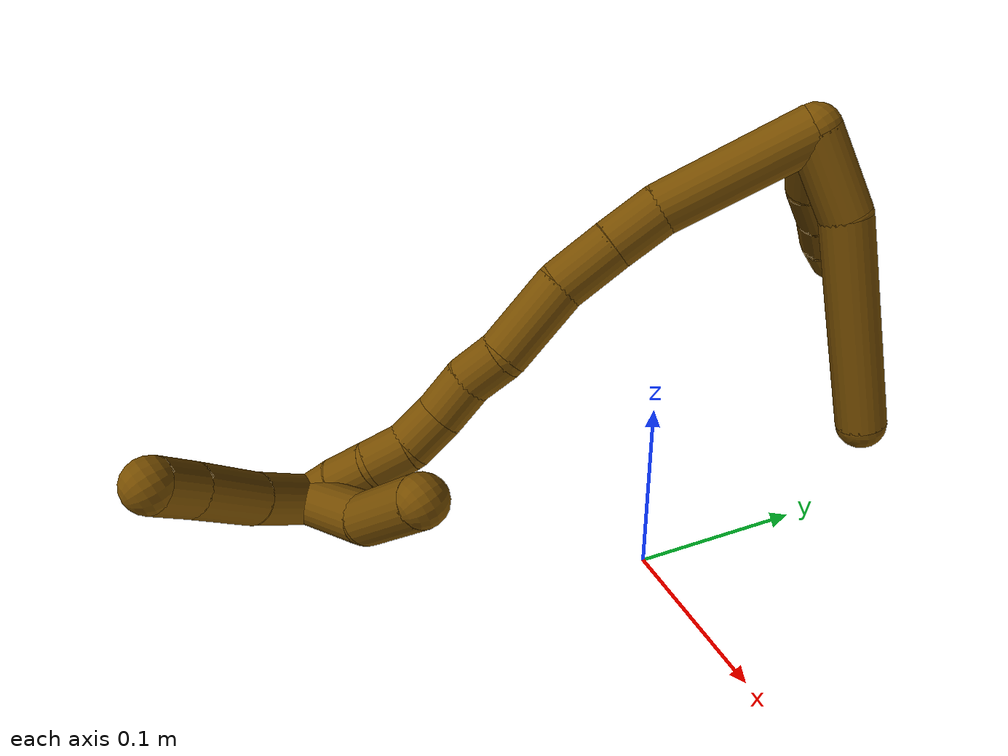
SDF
<sdf version="1.7">
 <world name="default">
  <model name="12">
   <static>0</static>
   <link name="12">
    <collision name="collision-cylinder-e_1_2_8">
     <pose>0.020524 0.002142 -0.000743 -1.90483 1.46075 -1.79895</pose>
     <geometry><cylinder><radius>0.0125</radius><length>0.041297</length></cylinder></geometry>
     <surface>
      <friction><ode><mu>1.16</mu><mu2>1.16</mu2><slip1>0</slip1><slip2>0</slip2></ode></friction>
      <contact><ode><kp>1e+06</kp><kd>1</kd><max_vel>0</max_vel><min_depth>0.001</min_depth></ode></contact>
     </surface>
    </collision>
    <visual name="visual-cylinder-e_1_2_8">
     <pose>0.020524 0.002142 -0.000743 -1.90483 1.46075 -1.79895</pose>
     <geometry><cylinder><radius>0.0125</radius><length>0.041297</length></cylinder></geometry>
     <material><ambient>0.466667 0.301961 0 1</ambient></material>
    </visual>
    <collision name="collision-cylinder-e_2_8_6">
     <pose>0.094699 -0.000383 0.005844 0.566953 1.4102 0.486056</pose>
     <geometry><cylinder><radius>0.0125</radius><length>0.108703</length></cylinder></geometry>
     <surface>
      <friction><ode><mu>1.16</mu><mu2>1.16</mu2><slip1>0</slip1><slip2>0</slip2></ode></friction>
      <contact><ode><kp>1e+06</kp><kd>1</kd><max_vel>0</max_vel><min_depth>0.001</min_depth></ode></contact>
     </surface>
    </collision>
    <visual name="visual-cylinder-e_2_8_6">
     <pose>0.094699 -0.000383 0.005844 0.566953 1.4102 0.486056</pose>
     <geometry><cylinder><radius>0.0125</radius><length>0.108703</length></cylinder></geometry>
     <material><ambient>0.466667 0.301961 0 1</ambient></material>
    </visual>
    <collision name="collision-cylinder-e_1_2_9">
     <pose>0.014243 -0.008206 -0.003726 1.99702 1.00663 1.41446</pose>
     <geometry><cylinder><radius>0.0125</radius><length>0.033709</length></cylinder></geometry>
     <surface>
      <friction><ode><mu>1.16</mu><mu2>1.16</mu2><slip1>0</slip1><slip2>0</slip2></ode></friction>
      <contact><ode><kp>1e+06</kp><kd>1</kd><max_vel>0</max_vel><min_depth>0.001</min_depth></ode></contact>
     </surface>
    </collision>
    <visual name="visual-cylinder-e_1_2_9">
     <pose>0.014243 -0.008206 -0.003726 1.99702 1.00663 1.41446</pose>
     <geometry><cylinder><radius>0.0125</radius><length>0.033709</length></cylinder></geometry>
     <material><ambient>0.466667 0.301961 0 1</ambient></material>
    </visual>
    <collision name="collision-cylinder-e_2_9_10">
     <pose>0.038265 -0.019733 -0.011607 2.46734 1.0726 2.07602</pose>
     <geometry><cylinder><radius>0.0125</radius><length>0.022265</length></cylinder></geometry>
     <surface>
      <friction><ode><mu>1.16</mu><mu2>1.16</mu2><slip1>0</slip1><slip2>0</slip2></ode></friction>
      <contact><ode><kp>1e+06</kp><kd>1</kd><max_vel>0</max_vel><min_depth>0.001</min_depth></ode></contact>
     </surface>
    </collision>
    <visual name="visual-cylinder-e_2_9_10">
     <pose>0.038265 -0.019733 -0.011607 2.46734 1.0726 2.07602</pose>
     <geometry><cylinder><radius>0.0125</radius><length>0.022265</length></cylinder></geometry>
     <material><ambient>0.466667 0.301961 0 1</ambient></material>
    </visual>
    <collision name="collision-cylinder-e_3_10_11">
     <pose>0.056756 -0.027863 -0.01977 2.26556 0.947748 1.66141</pose>
     <geometry><cylinder><radius>0.0125</radius><length>0.021455</length></cylinder></geometry>
     <surface>
      <friction><ode><mu>1.16</mu><mu2>1.16</mu2><slip1>0</slip1><slip2>0</slip2></ode></friction>
      <contact><ode><kp>1e+06</kp><kd>1</kd><max_vel>0</max_vel><min_depth>0.001</min_depth></ode></contact>
     </surface>
    </collision>
    <visual name="visual-cylinder-e_3_10_11">
     <pose>0.056756 -0.027863 -0.01977 2.26556 0.947748 1.66141</pose>
     <geometry><cylinder><radius>0.0125</radius><length>0.021455</length></cylinder></geometry>
     <material><ambient>0.466667 0.301961 0 1</ambient></material>
    </visual>
    <collision name="collision-cylinder-e_4_11_5">
     <pose>0.07381 -0.037165 -0.029908 2.50908 0.831836 1.86631</pose>
     <geometry><cylinder><radius>0.0125</radius><length>0.022571</length></cylinder></geometry>
     <surface>
      <friction><ode><mu>1.16</mu><mu2>1.16</mu2><slip1>0</slip1><slip2>0</slip2></ode></friction>
      <contact><ode><kp>1e+06</kp><kd>1</kd><max_vel>0</max_vel><min_depth>0.001</min_depth></ode></contact>
     </surface>
    </collision>
    <visual name="visual-cylinder-e_4_11_5">
     <pose>0.07381 -0.037165 -0.029908 2.50908 0.831836 1.86631</pose>
     <geometry><cylinder><radius>0.0125</radius><length>0.022571</length></cylinder></geometry>
     <material><ambient>0.466667 0.301961 0 1</ambient></material>
    </visual>
    <collision name="collision-cylinder-e_1_2_12">
     <pose>0.004796 -0.022697 0.029169 0.661248 0.129047 0.044346</pose>
     <geometry><cylinder><radius>0.0125</radius><length>0.074538</length></cylinder></geometry>
     <surface>
      <friction><ode><mu>1.16</mu><mu2>1.16</mu2><slip1>0</slip1><slip2>0</slip2></ode></friction>
      <contact><ode><kp>1e+06</kp><kd>1</kd><max_vel>0</max_vel><min_depth>0.001</min_depth></ode></contact>
     </surface>
    </collision>
    <visual name="visual-cylinder-e_1_2_12">
     <pose>0.004796 -0.022697 0.029169 0.661248 0.129047 0.044346</pose>
     <geometry><cylinder><radius>0.0125</radius><length>0.074538</length></cylinder></geometry>
     <material><ambient>0.466667 0.301961 0 1</ambient></material>
    </visual>
    <collision name="collision-cylinder-e_2_12_13">
     <pose>0.01287 -0.05122 0.070042 0.461885 0.245619 0.05803</pose>
     <geometry><cylinder><radius>0.0125</radius><length>0.026957</length></cylinder></geometry>
     <surface>
      <friction><ode><mu>1.16</mu><mu2>1.16</mu2><slip1>0</slip1><slip2>0</slip2></ode></friction>
      <contact><ode><kp>1e+06</kp><kd>1</kd><max_vel>0</max_vel><min_depth>0.001</min_depth></ode></contact>
     </surface>
    </collision>
    <visual name="visual-cylinder-e_2_12_13">
     <pose>0.01287 -0.05122 0.070042 0.461885 0.245619 0.05803</pose>
     <geometry><cylinder><radius>0.0125</radius><length>0.026957</length></cylinder></geometry>
     <material><ambient>0.466667 0.301961 0 1</ambient></material>
    </visual>
    <collision name="collision-cylinder-e_3_13_14">
     <pose>0.020357 -0.063604 0.094794 0.465767 0.28069 0.066992</pose>
     <geometry><cylinder><radius>0.0125</radius><length>0.030396</length></cylinder></geometry>
     <surface>
      <friction><ode><mu>1.16</mu><mu2>1.16</mu2><slip1>0</slip1><slip2>0</slip2></ode></friction>
      <contact><ode><kp>1e+06</kp><kd>1</kd><max_vel>0</max_vel><min_depth>0.001</min_depth></ode></contact>
     </surface>
    </collision>
    <visual name="visual-cylinder-e_3_13_14">
     <pose>0.020357 -0.063604 0.094794 0.465767 0.28069 0.066992</pose>
     <geometry><cylinder><radius>0.0125</radius><length>0.030396</length></cylinder></geometry>
     <material><ambient>0.466667 0.301961 0 1</ambient></material>
    </visual>
    <collision name="collision-cylinder-e_4_14_15">
     <pose>0.033686 -0.076515 0.125494 0.345408 0.452442 0.080256</pose>
     <geometry><cylinder><radius>0.0125</radius><length>0.041718</length></cylinder></geometry>
     <surface>
      <friction><ode><mu>1.16</mu><mu2>1.16</mu2><slip1>0</slip1><slip2>0</slip2></ode></friction>
      <contact><ode><kp>1e+06</kp><kd>1</kd><max_vel>0</max_vel><min_depth>0.001</min_depth></ode></contact>
     </surface>
    </collision>
    <visual name="visual-cylinder-e_4_14_15">
     <pose>0.033686 -0.076515 0.125494 0.345408 0.452442 0.080256</pose>
     <geometry><cylinder><radius>0.0125</radius><length>0.041718</length></cylinder></geometry>
     <material><ambient>0.466667 0.301961 0 1</ambient></material>
    </visual>
    <collision name="collision-cylinder-e_5_15_16">
     <pose>0.046286 -0.089425 0.150986 0.696659 0.328217 0.120125</pose>
     <geometry><cylinder><radius>0.0125</radius><length>0.021595</length></cylinder></geometry>
     <surface>
      <friction><ode><mu>1.16</mu><mu2>1.16</mu2><slip1>0</slip1><slip2>0</slip2></ode></friction>
      <contact><ode><kp>1e+06</kp><kd>1</kd><max_vel>0</max_vel><min_depth>0.001</min_depth></ode></contact>
     </surface>
    </collision>
    <visual name="visual-cylinder-e_5_15_16">
     <pose>0.046286 -0.089425 0.150986 0.696659 0.328217 0.120125</pose>
     <geometry><cylinder><radius>0.0125</radius><length>0.021595</length></cylinder></geometry>
     <material><ambient>0.466667 0.301961 0 1</ambient></material>
    </visual>
    <collision name="collision-cylinder-e_6_16_17">
     <pose>0.055267 -0.100698 0.16773 0.486885 0.499686 0.126585</pose>
     <geometry><cylinder><radius>0.0125</radius><length>0.02296</length></cylinder></geometry>
     <surface>
      <friction><ode><mu>1.16</mu><mu2>1.16</mu2><slip1>0</slip1><slip2>0</slip2></ode></friction>
      <contact><ode><kp>1e+06</kp><kd>1</kd><max_vel>0</max_vel><min_depth>0.001</min_depth></ode></contact>
     </surface>
    </collision>
    <visual name="visual-cylinder-e_6_16_17">
     <pose>0.055267 -0.100698 0.16773 0.486885 0.499686 0.126585</pose>
     <geometry><cylinder><radius>0.0125</radius><length>0.02296</length></cylinder></geometry>
     <material><ambient>0.466667 0.301961 0 1</ambient></material>
    </visual>
    <collision name="collision-cylinder-e_7_17_18">
     <pose>0.064304 -0.108287 0.186283 0.289629 0.337885 0.04974</pose>
     <geometry><cylinder><radius>0.0125</radius><length>0.02134</length></cylinder></geometry>
     <surface>
      <friction><ode><mu>1.16</mu><mu2>1.16</mu2><slip1>0</slip1><slip2>0</slip2></ode></friction>
      <contact><ode><kp>1e+06</kp><kd>1</kd><max_vel>0</max_vel><min_depth>0.001</min_depth></ode></contact>
     </surface>
    </collision>
    <visual name="visual-cylinder-e_7_17_18">
     <pose>0.064304 -0.108287 0.186283 0.289629 0.337885 0.04974</pose>
     <geometry><cylinder><radius>0.0125</radius><length>0.02134</length></cylinder></geometry>
     <material><ambient>0.466667 0.301961 0 1</ambient></material>
    </visual>
    <collision name="collision-cylinder-e_8_18_19">
     <pose>0.068762 -0.115805 0.204745 0.484768 0.092138 0.022796</pose>
     <geometry><cylinder><radius>0.0125</radius><length>0.020009</length></cylinder></geometry>
     <surface>
      <friction><ode><mu>1.16</mu><mu2>1.16</mu2><slip1>0</slip1><slip2>0</slip2></ode></friction>
      <contact><ode><kp>1e+06</kp><kd>1</kd><max_vel>0</max_vel><min_depth>0.001</min_depth></ode></contact>
     </surface>
    </collision>
    <visual name="visual-cylinder-e_8_18_19">
     <pose>0.068762 -0.115805 0.204745 0.484768 0.092138 0.022796</pose>
     <geometry><cylinder><radius>0.0125</radius><length>0.020009</length></cylinder></geometry>
     <material><ambient>0.466667 0.301961 0 1</ambient></material>
    </visual>
    <collision name="collision-cylinder-e_9_19_20">
     <pose>0.071457 -0.127208 0.220918 0.743112 0.175776 0.068642</pose>
     <geometry><cylinder><radius>0.0125</radius><length>0.020299</length></cylinder></geometry>
     <surface>
      <friction><ode><mu>1.16</mu><mu2>1.16</mu2><slip1>0</slip1><slip2>0</slip2></ode></friction>
      <contact><ode><kp>1e+06</kp><kd>1</kd><max_vel>0</max_vel><min_depth>0.001</min_depth></ode></contact>
     </surface>
    </collision>
    <visual name="visual-cylinder-e_9_19_20">
     <pose>0.071457 -0.127208 0.220918 0.743112 0.175776 0.068642</pose>
     <geometry><cylinder><radius>0.0125</radius><length>0.020299</length></cylinder></geometry>
     <material><ambient>0.466667 0.301961 0 1</ambient></material>
    </visual>
    <collision name="collision-cylinder-e_10_20_1">
     <pose>0.075898 -0.140453 0.235539 0.728794 0.267213 0.102444</pose>
     <geometry><cylinder><radius>0.0125</radius><length>0.020187</length></cylinder></geometry>
     <surface>
      <friction><ode><mu>1.16</mu><mu2>1.16</mu2><slip1>0</slip1><slip2>0</slip2></ode></friction>
      <contact><ode><kp>1e+06</kp><kd>1</kd><max_vel>0</max_vel><min_depth>0.001</min_depth></ode></contact>
     </surface>
    </collision>
    <visual name="visual-cylinder-e_10_20_1">
     <pose>0.075898 -0.140453 0.235539 0.728794 0.267213 0.102444</pose>
     <geometry><cylinder><radius>0.0125</radius><length>0.020187</length></cylinder></geometry>
     <material><ambient>0.466667 0.301961 0 1</ambient></material>
    </visual>
    <collision name="collision-cylinder-e_1_1_21">
     <pose>0.078116 -0.119452 0.238509 -1.72575 -0.01606 0.018764</pose>
     <geometry><cylinder><radius>0.0125</radius><length>0.055642</length></cylinder></geometry>
     <surface>
      <friction><ode><mu>1.16</mu><mu2>1.16</mu2><slip1>0</slip1><slip2>0</slip2></ode></friction>
      <contact><ode><kp>1e+06</kp><kd>1</kd><max_vel>0</max_vel><min_depth>0.001</min_depth></ode></contact>
     </surface>
    </collision>
    <visual name="visual-cylinder-e_1_1_21">
     <pose>0.078116 -0.119452 0.238509 -1.72575 -0.01606 0.018764</pose>
     <geometry><cylinder><radius>0.0125</radius><length>0.055642</length></cylinder></geometry>
     <material><ambient>0.466667 0.301961 0 1</ambient></material>
    </visual>
    <collision name="collision-cylinder-e_2_21_4">
     <pose>0.07136 -0.072121 0.226587 -1.93774 -0.288437 0.416668</pose>
     <geometry><cylinder><radius>0.0125</radius><length>0.044358</length></cylinder></geometry>
     <surface>
      <friction><ode><mu>1.16</mu><mu2>1.16</mu2><slip1>0</slip1><slip2>0</slip2></ode></friction>
      <contact><ode><kp>1e+06</kp><kd>1</kd><max_vel>0</max_vel><min_depth>0.001</min_depth></ode></contact>
     </surface>
    </collision>
    <visual name="visual-cylinder-e_2_21_4">
     <pose>0.07136 -0.072121 0.226587 -1.93774 -0.288437 0.416668</pose>
     <geometry><cylinder><radius>0.0125</radius><length>0.044358</length></cylinder></geometry>
     <material><ambient>0.466667 0.301961 0 1</ambient></material>
    </visual>
    <collision name="collision-cylinder-e_1_1_22">
     <pose>0.066107 -0.137318 0.255267 -0.65722 -0.669312 0.236034</pose>
     <geometry><cylinder><radius>0.0125</radius><length>0.040152</length></cylinder></geometry>
     <surface>
      <friction><ode><mu>1.16</mu><mu2>1.16</mu2><slip1>0</slip1><slip2>0</slip2></ode></friction>
      <contact><ode><kp>1e+06</kp><kd>1</kd><max_vel>0</max_vel><min_depth>0.001</min_depth></ode></contact>
     </surface>
    </collision>
    <visual name="visual-cylinder-e_1_1_22">
     <pose>0.066107 -0.137318 0.255267 -0.65722 -0.669312 0.236034</pose>
     <geometry><cylinder><radius>0.0125</radius><length>0.040152</length></cylinder></geometry>
     <material><ambient>0.466667 0.301961 0 1</ambient></material>
    </visual>
    <collision name="collision-cylinder-e_2_22_23">
     <pose>0.040763 -0.119235 0.278474 -0.667344 -0.755685 0.27345</pose>
     <geometry><cylinder><radius>0.0125</radius><length>0.037585</length></cylinder></geometry>
     <surface>
      <friction><ode><mu>1.16</mu><mu2>1.16</mu2><slip1>0</slip1><slip2>0</slip2></ode></friction>
      <contact><ode><kp>1e+06</kp><kd>1</kd><max_vel>0</max_vel><min_depth>0.001</min_depth></ode></contact>
     </surface>
    </collision>
    <visual name="visual-cylinder-e_2_22_23">
     <pose>0.040763 -0.119235 0.278474 -0.667344 -0.755685 0.27345</pose>
     <geometry><cylinder><radius>0.0125</radius><length>0.037585</length></cylinder></geometry>
     <material><ambient>0.466667 0.301961 0 1</ambient></material>
    </visual>
    <collision name="collision-cylinder-e_3_23_3">
     <pose>0.020486 -0.105334 0.295524 -0.711358 -0.725888 0.280301</pose>
     <geometry><cylinder><radius>0.0125</radius><length>0.022264</length></cylinder></geometry>
     <surface>
      <friction><ode><mu>1.16</mu><mu2>1.16</mu2><slip1>0</slip1><slip2>0</slip2></ode></friction>
      <contact><ode><kp>1e+06</kp><kd>1</kd><max_vel>0</max_vel><min_depth>0.001</min_depth></ode></contact>
     </surface>
    </collision>
    <visual name="visual-cylinder-e_3_23_3">
     <pose>0.020486 -0.105334 0.295524 -0.711358 -0.725888 0.280301</pose>
     <geometry><cylinder><radius>0.0125</radius><length>0.022264</length></cylinder></geometry>
     <material><ambient>0.466667 0.301961 0 1</ambient></material>
    </visual>
    <collision name="collision-sphere-3">
     <pose>0.013097 -0.099899 0.30183 0 -0 0</pose>
     <geometry><sphere><radius>0.0125</radius></sphere></geometry>
     <surface>
      <friction><ode><mu>1.16</mu><mu2>1.16</mu2><slip1>0</slip1><slip2>0</slip2></ode></friction>
      <contact><ode><kp>1e+06</kp><kd>1</kd><max_vel>0</max_vel><min_depth>0.001</min_depth></ode></contact>
     </surface>
    </collision>
    <visual name="visual-sphere-3">
     <pose>0.013097 -0.099899 0.30183 0 -0 0</pose>
     <geometry><sphere><radius>0.0125</radius></sphere></geometry>
     <material><ambient>0.466667 0.301961 0 1</ambient></material>
    </visual>
    <collision name="collision-sphere-23">
     <pose>0.027876 -0.11077 0.289217 0 -0 0</pose>
     <geometry><sphere><radius>0.0125</radius></sphere></geometry>
     <surface>
      <friction><ode><mu>1.16</mu><mu2>1.16</mu2><slip1>0</slip1><slip2>0</slip2></ode></friction>
      <contact><ode><kp>1e+06</kp><kd>1</kd><max_vel>0</max_vel><min_depth>0.001</min_depth></ode></contact>
     </surface>
    </collision>
    <visual name="visual-sphere-23">
     <pose>0.027876 -0.11077 0.289217 0 -0 0</pose>
     <geometry><sphere><radius>0.0125</radius></sphere></geometry>
     <material><ambient>0.466667 0.301961 0 1</ambient></material>
    </visual>
    <collision name="collision-sphere-22">
     <pose>0.053651 -0.127699 0.267731 0 -0 0</pose>
     <geometry><sphere><radius>0.0125</radius></sphere></geometry>
     <surface>
      <friction><ode><mu>1.16</mu><mu2>1.16</mu2><slip1>0</slip1><slip2>0</slip2></ode></friction>
      <contact><ode><kp>1e+06</kp><kd>1</kd><max_vel>0</max_vel><min_depth>0.001</min_depth></ode></contact>
     </surface>
    </collision>
    <visual name="visual-sphere-22">
     <pose>0.053651 -0.127699 0.267731 0 -0 0</pose>
     <geometry><sphere><radius>0.0125</radius></sphere></geometry>
     <material><ambient>0.466667 0.301961 0 1</ambient></material>
    </visual>
    <collision name="collision-sphere-4">
     <pose>0.065051 -0.052274 0.218959 0 -0 0</pose>
     <geometry><sphere><radius>0.0125</radius></sphere></geometry>
     <surface>
      <friction><ode><mu>1.16</mu><mu2>1.16</mu2><slip1>0</slip1><slip2>0</slip2></ode></friction>
      <contact><ode><kp>1e+06</kp><kd>1</kd><max_vel>0</max_vel><min_depth>0.001</min_depth></ode></contact>
     </surface>
    </collision>
    <visual name="visual-sphere-4">
     <pose>0.065051 -0.052274 0.218959 0 -0 0</pose>
     <geometry><sphere><radius>0.0125</radius></sphere></geometry>
     <material><ambient>0.466667 0.301961 0 1</ambient></material>
    </visual>
    <collision name="collision-sphere-21">
     <pose>0.077669 -0.091968 0.234215 0 -0 0</pose>
     <geometry><sphere><radius>0.0125</radius></sphere></geometry>
     <surface>
      <friction><ode><mu>1.16</mu><mu2>1.16</mu2><slip1>0</slip1><slip2>0</slip2></ode></friction>
      <contact><ode><kp>1e+06</kp><kd>1</kd><max_vel>0</max_vel><min_depth>0.001</min_depth></ode></contact>
     </surface>
    </collision>
    <visual name="visual-sphere-21">
     <pose>0.077669 -0.091968 0.234215 0 -0 0</pose>
     <geometry><sphere><radius>0.0125</radius></sphere></geometry>
     <material><ambient>0.466667 0.301961 0 1</ambient></material>
    </visual>
    <collision name="collision-sphere-1">
     <pose>0.078563 -0.146937 0.242802 0 -0 0</pose>
     <geometry><sphere><radius>0.0125</radius></sphere></geometry>
     <surface>
      <friction><ode><mu>1.16</mu><mu2>1.16</mu2><slip1>0</slip1><slip2>0</slip2></ode></friction>
      <contact><ode><kp>1e+06</kp><kd>1</kd><max_vel>0</max_vel><min_depth>0.001</min_depth></ode></contact>
     </surface>
    </collision>
    <visual name="visual-sphere-1">
     <pose>0.078563 -0.146937 0.242802 0 -0 0</pose>
     <geometry><sphere><radius>0.0125</radius></sphere></geometry>
     <material><ambient>0.466667 0.301961 0 1</ambient></material>
    </visual>
    <collision name="collision-sphere-11">
     <pose>0.065468 -0.032672 -0.023778 0 -0 0</pose>
     <geometry><sphere><radius>0.0125</radius></sphere></geometry>
     <surface>
      <friction><ode><mu>1.16</mu><mu2>1.16</mu2><slip1>0</slip1><slip2>0</slip2></ode></friction>
      <contact><ode><kp>1e+06</kp><kd>1</kd><max_vel>0</max_vel><min_depth>0.001</min_depth></ode></contact>
     </surface>
    </collision>
    <visual name="visual-sphere-11">
     <pose>0.065468 -0.032672 -0.023778 0 -0 0</pose>
     <geometry><sphere><radius>0.0125</radius></sphere></geometry>
     <material><ambient>0.466667 0.301961 0 1</ambient></material>
    </visual>
    <collision name="collision-sphere-10">
     <pose>0.048044 -0.023054 -0.015763 0 -0 0</pose>
     <geometry><sphere><radius>0.0125</radius></sphere></geometry>
     <surface>
      <friction><ode><mu>1.16</mu><mu2>1.16</mu2><slip1>0</slip1><slip2>0</slip2></ode></friction>
      <contact><ode><kp>1e+06</kp><kd>1</kd><max_vel>0</max_vel><min_depth>0.001</min_depth></ode></contact>
     </surface>
    </collision>
    <visual name="visual-sphere-10">
     <pose>0.048044 -0.023054 -0.015763 0 -0 0</pose>
     <geometry><sphere><radius>0.0125</radius></sphere></geometry>
     <material><ambient>0.466667 0.301961 0 1</ambient></material>
    </visual>
    <collision name="collision-sphere-6">
     <pose>0.148351 -0.005051 0.013176 0 -0 0</pose>
     <geometry><sphere><radius>0.0125</radius></sphere></geometry>
     <surface>
      <friction><ode><mu>1.16</mu><mu2>1.16</mu2><slip1>0</slip1><slip2>0</slip2></ode></friction>
      <contact><ode><kp>1e+06</kp><kd>1</kd><max_vel>0</max_vel><min_depth>0.001</min_depth></ode></contact>
     </surface>
    </collision>
    <visual name="visual-sphere-6">
     <pose>0.148351 -0.005051 0.013176 0 -0 0</pose>
     <geometry><sphere><radius>0.0125</radius></sphere></geometry>
     <material><ambient>0.466667 0.301961 0 1</ambient></material>
    </visual>
    <collision name="collision-sphere-9">
     <pose>0.028486 -0.016412 -0.007452 0 -0 0</pose>
     <geometry><sphere><radius>0.0125</radius></sphere></geometry>
     <surface>
      <friction><ode><mu>1.16</mu><mu2>1.16</mu2><slip1>0</slip1><slip2>0</slip2></ode></friction>
      <contact><ode><kp>1e+06</kp><kd>1</kd><max_vel>0</max_vel><min_depth>0.001</min_depth></ode></contact>
     </surface>
    </collision>
    <visual name="visual-sphere-9">
     <pose>0.028486 -0.016412 -0.007452 0 -0 0</pose>
     <geometry><sphere><radius>0.0125</radius></sphere></geometry>
     <material><ambient>0.466667 0.301961 0 1</ambient></material>
    </visual>
    <collision name="collision-sphere-2">
     <geometry><sphere><radius>0.0125</radius></sphere></geometry>
     <surface>
      <friction><ode><mu>1.16</mu><mu2>1.16</mu2><slip1>0</slip1><slip2>0</slip2></ode></friction>
      <contact><ode><kp>1e+06</kp><kd>1</kd><max_vel>0</max_vel><min_depth>0.001</min_depth></ode></contact>
     </surface>
    </collision>
    <visual name="visual-sphere-2">
     <geometry><sphere><radius>0.0125</radius></sphere></geometry>
     <material><ambient>0.466667 0.301961 0 1</ambient></material>
    </visual>
    <collision name="collision-sphere-19">
     <pose>0.069683 -0.120447 0.21356 0 -0 0</pose>
     <geometry><sphere><radius>0.0125</radius></sphere></geometry>
     <surface>
      <friction><ode><mu>1.16</mu><mu2>1.16</mu2><slip1>0</slip1><slip2>0</slip2></ode></friction>
      <contact><ode><kp>1e+06</kp><kd>1</kd><max_vel>0</max_vel><min_depth>0.001</min_depth></ode></contact>
     </surface>
    </collision>
    <visual name="visual-sphere-19">
     <pose>0.069683 -0.120447 0.21356 0 -0 0</pose>
     <geometry><sphere><radius>0.0125</radius></sphere></geometry>
     <material><ambient>0.466667 0.301961 0 1</ambient></material>
    </visual>
    <collision name="collision-sphere-8">
     <pose>0.041047 0.004285 -0.001487 0 -0 0</pose>
     <geometry><sphere><radius>0.0125</radius></sphere></geometry>
     <surface>
      <friction><ode><mu>1.16</mu><mu2>1.16</mu2><slip1>0</slip1><slip2>0</slip2></ode></friction>
      <contact><ode><kp>1e+06</kp><kd>1</kd><max_vel>0</max_vel><min_depth>0.001</min_depth></ode></contact>
     </surface>
    </collision>
    <visual name="visual-sphere-8">
     <pose>0.041047 0.004285 -0.001487 0 -0 0</pose>
     <geometry><sphere><radius>0.0125</radius></sphere></geometry>
     <material><ambient>0.466667 0.301961 0 1</ambient></material>
    </visual>
    <collision name="collision-sphere-5">
     <pose>0.082151 -0.041659 -0.036039 0 -0 0</pose>
     <geometry><sphere><radius>0.0125</radius></sphere></geometry>
     <surface>
      <friction><ode><mu>1.16</mu><mu2>1.16</mu2><slip1>0</slip1><slip2>0</slip2></ode></friction>
      <contact><ode><kp>1e+06</kp><kd>1</kd><max_vel>0</max_vel><min_depth>0.001</min_depth></ode></contact>
     </surface>
    </collision>
    <visual name="visual-sphere-5">
     <pose>0.082151 -0.041659 -0.036039 0 -0 0</pose>
     <geometry><sphere><radius>0.0125</radius></sphere></geometry>
     <material><ambient>0.466667 0.301961 0 1</ambient></material>
    </visual>
    <collision name="collision-sphere-12">
     <pose>0.009592 -0.045394 0.058339 0 -0 0</pose>
     <geometry><sphere><radius>0.0125</radius></sphere></geometry>
     <surface>
      <friction><ode><mu>1.16</mu><mu2>1.16</mu2><slip1>0</slip1><slip2>0</slip2></ode></friction>
      <contact><ode><kp>1e+06</kp><kd>1</kd><max_vel>0</max_vel><min_depth>0.001</min_depth></ode></contact>
     </surface>
    </collision>
    <visual name="visual-sphere-12">
     <pose>0.009592 -0.045394 0.058339 0 -0 0</pose>
     <geometry><sphere><radius>0.0125</radius></sphere></geometry>
     <material><ambient>0.466667 0.301961 0 1</ambient></material>
    </visual>
    <collision name="collision-sphere-13">
     <pose>0.016147 -0.057046 0.081746 0 -0 0</pose>
     <geometry><sphere><radius>0.0125</radius></sphere></geometry>
     <surface>
      <friction><ode><mu>1.16</mu><mu2>1.16</mu2><slip1>0</slip1><slip2>0</slip2></ode></friction>
      <contact><ode><kp>1e+06</kp><kd>1</kd><max_vel>0</max_vel><min_depth>0.001</min_depth></ode></contact>
     </surface>
    </collision>
    <visual name="visual-sphere-13">
     <pose>0.016147 -0.057046 0.081746 0 -0 0</pose>
     <geometry><sphere><radius>0.0125</radius></sphere></geometry>
     <material><ambient>0.466667 0.301961 0 1</ambient></material>
    </visual>
    <collision name="collision-sphere-14">
     <pose>0.024567 -0.070163 0.107842 0 -0 0</pose>
     <geometry><sphere><radius>0.0125</radius></sphere></geometry>
     <surface>
      <friction><ode><mu>1.16</mu><mu2>1.16</mu2><slip1>0</slip1><slip2>0</slip2></ode></friction>
      <contact><ode><kp>1e+06</kp><kd>1</kd><max_vel>0</max_vel><min_depth>0.001</min_depth></ode></contact>
     </surface>
    </collision>
    <visual name="visual-sphere-14">
     <pose>0.024567 -0.070163 0.107842 0 -0 0</pose>
     <geometry><sphere><radius>0.0125</radius></sphere></geometry>
     <material><ambient>0.466667 0.301961 0 1</ambient></material>
    </visual>
    <collision name="collision-sphere-15">
     <pose>0.042805 -0.082867 0.143146 0 -0 0</pose>
     <geometry><sphere><radius>0.0125</radius></sphere></geometry>
     <surface>
      <friction><ode><mu>1.16</mu><mu2>1.16</mu2><slip1>0</slip1><slip2>0</slip2></ode></friction>
      <contact><ode><kp>1e+06</kp><kd>1</kd><max_vel>0</max_vel><min_depth>0.001</min_depth></ode></contact>
     </surface>
    </collision>
    <visual name="visual-sphere-15">
     <pose>0.042805 -0.082867 0.143146 0 -0 0</pose>
     <geometry><sphere><radius>0.0125</radius></sphere></geometry>
     <material><ambient>0.466667 0.301961 0 1</ambient></material>
    </visual>
    <collision name="collision-sphere-16">
     <pose>0.049766 -0.095983 0.158825 0 -0 0</pose>
     <geometry><sphere><radius>0.0125</radius></sphere></geometry>
     <surface>
      <friction><ode><mu>1.16</mu><mu2>1.16</mu2><slip1>0</slip1><slip2>0</slip2></ode></friction>
      <contact><ode><kp>1e+06</kp><kd>1</kd><max_vel>0</max_vel><min_depth>0.001</min_depth></ode></contact>
     </surface>
    </collision>
    <visual name="visual-sphere-16">
     <pose>0.049766 -0.095983 0.158825 0 -0 0</pose>
     <geometry><sphere><radius>0.0125</radius></sphere></geometry>
     <material><ambient>0.466667 0.301961 0 1</ambient></material>
    </visual>
    <collision name="collision-sphere-17">
     <pose>0.060767 -0.105412 0.176636 0 -0 0</pose>
     <geometry><sphere><radius>0.0125</radius></sphere></geometry>
     <surface>
      <friction><ode><mu>1.16</mu><mu2>1.16</mu2><slip1>0</slip1><slip2>0</slip2></ode></friction>
      <contact><ode><kp>1e+06</kp><kd>1</kd><max_vel>0</max_vel><min_depth>0.001</min_depth></ode></contact>
     </surface>
    </collision>
    <visual name="visual-sphere-17">
     <pose>0.060767 -0.105412 0.176636 0 -0 0</pose>
     <geometry><sphere><radius>0.0125</radius></sphere></geometry>
     <material><ambient>0.466667 0.301961 0 1</ambient></material>
    </visual>
    <collision name="collision-sphere-18">
     <pose>0.067842 -0.111162 0.195931 0 -0 0</pose>
     <geometry><sphere><radius>0.0125</radius></sphere></geometry>
     <surface>
      <friction><ode><mu>1.16</mu><mu2>1.16</mu2><slip1>0</slip1><slip2>0</slip2></ode></friction>
      <contact><ode><kp>1e+06</kp><kd>1</kd><max_vel>0</max_vel><min_depth>0.001</min_depth></ode></contact>
     </surface>
    </collision>
    <visual name="visual-sphere-18">
     <pose>0.067842 -0.111162 0.195931 0 -0 0</pose>
     <geometry><sphere><radius>0.0125</radius></sphere></geometry>
     <material><ambient>0.466667 0.301961 0 1</ambient></material>
    </visual>
    <collision name="collision-sphere-20">
     <pose>0.073232 -0.13397 0.228277 0 -0 0</pose>
     <geometry><sphere><radius>0.0125</radius></sphere></geometry>
     <surface>
      <friction><ode><mu>1.16</mu><mu2>1.16</mu2><slip1>0</slip1><slip2>0</slip2></ode></friction>
      <contact><ode><kp>1e+06</kp><kd>1</kd><max_vel>0</max_vel><min_depth>0.001</min_depth></ode></contact>
     </surface>
    </collision>
    <visual name="visual-sphere-20">
     <pose>0.073232 -0.13397 0.228277 0 -0 0</pose>
     <geometry><sphere><radius>0.0125</radius></sphere></geometry>
     <material><ambient>0.466667 0.301961 0 1</ambient></material>
    </visual>
    <inertial>
     <pose>0.050986 -0.062371 0.115121 0 -0 0</pose>
     <mass>0.75</mass>
     <inertia>
      <ixx>0.00015</ixx>
      <ixy>0</ixy>
      <ixz>0</ixz>
      <iyy>0.000202</iyy>
      <iyz>0</iyz>
      <izz>-9.1e-05</izz>
     </inertia>
    </inertial>
   </link>
   <pose>0.025047 0.056454 0.243304 2.31928 1.19432 0.962908</pose>
  </model>
 </world>
</sdf>
